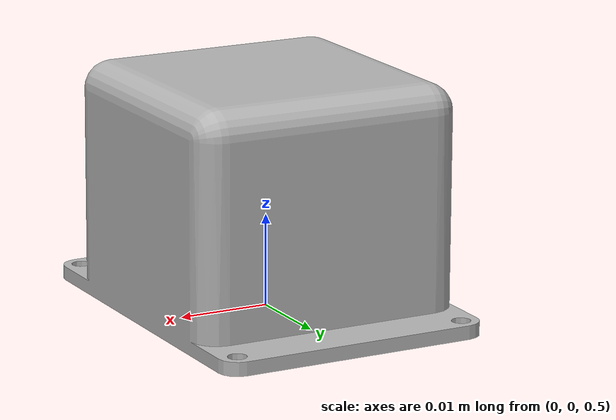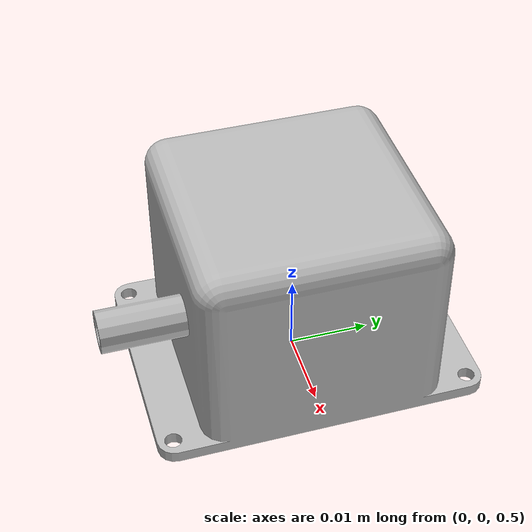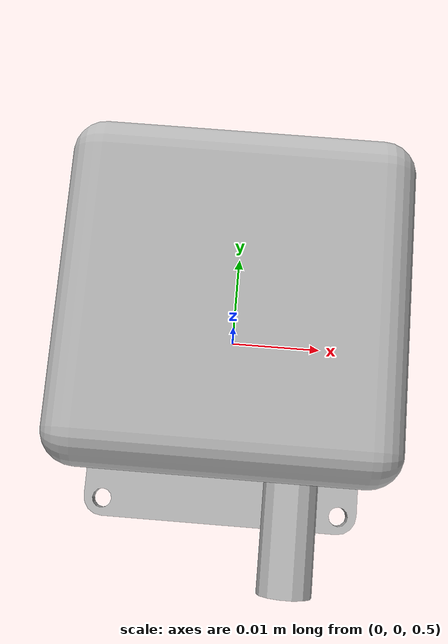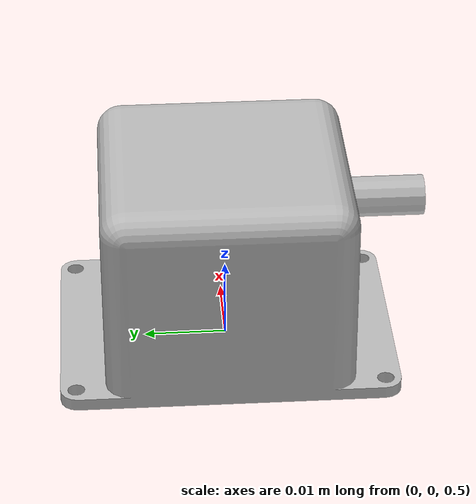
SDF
<?xml version="1.0"?>
<sdf version="1.4">
    <model name="gps_ins">
      <pose>0 0 0.5 0 0 0</pose>
      <link name="link">
      <gravity>0</gravity>

        <visual name="visual">
	<pose>0 0 0 1.57 0 1.57 </pose>
        <geometry>
	  <mesh>
	    <uri>model://GPS_INS/meshes/GNSS.STL </uri>
	  </mesh>
	</geometry>
        </visual>

      <sensor name='imu_component' type='imu'>
	<pose>0.01 0.04 0.007 0 -0.014 0</pose>
	<imu>
	  <topic>ODED</topic>
	</imu>
	<always_on>1</always_on>
	<update_rate>30</update_rate>
	<visualize>1</visualize>
      </sensor>

      </link>

    <plugin name="GPS_INS" filename="libgps_ins.so">
      <start_latitude>31.2622</start_latitude>
      <start_longitude>34.803611</start_longitude>
      <frequency>20</frequency>
      <noise>
	<gps>0.1</gps>        			<!-- Sigma[m]		-->
	<gps_speed>0.001</gps_speed>		<!-- Sigma[m/sec]	-->
	<rollpitch>0.001</rollpitch>    	<!-- Sigma[Rad]		-->
	<yaw>0.010</yaw>			<!-- Sigma[Rad]		-->
	<acc_bias>0.0</acc_bias>		<!-- Sigma[m/sec^2]	-->
	<acc_noise>0.15</acc_noise>		<!-- Sigma[m/sec^2]	-->
	<gyro_bias>0.0015</gyro_bias>		<!-- Sigma[Rad/sec]	-->
	<gyro_noise>0.25</gyro_noise>		<!-- Sigma[Rad/sec]	-->
      </noise>

    </plugin>
    </model>
</sdf>
